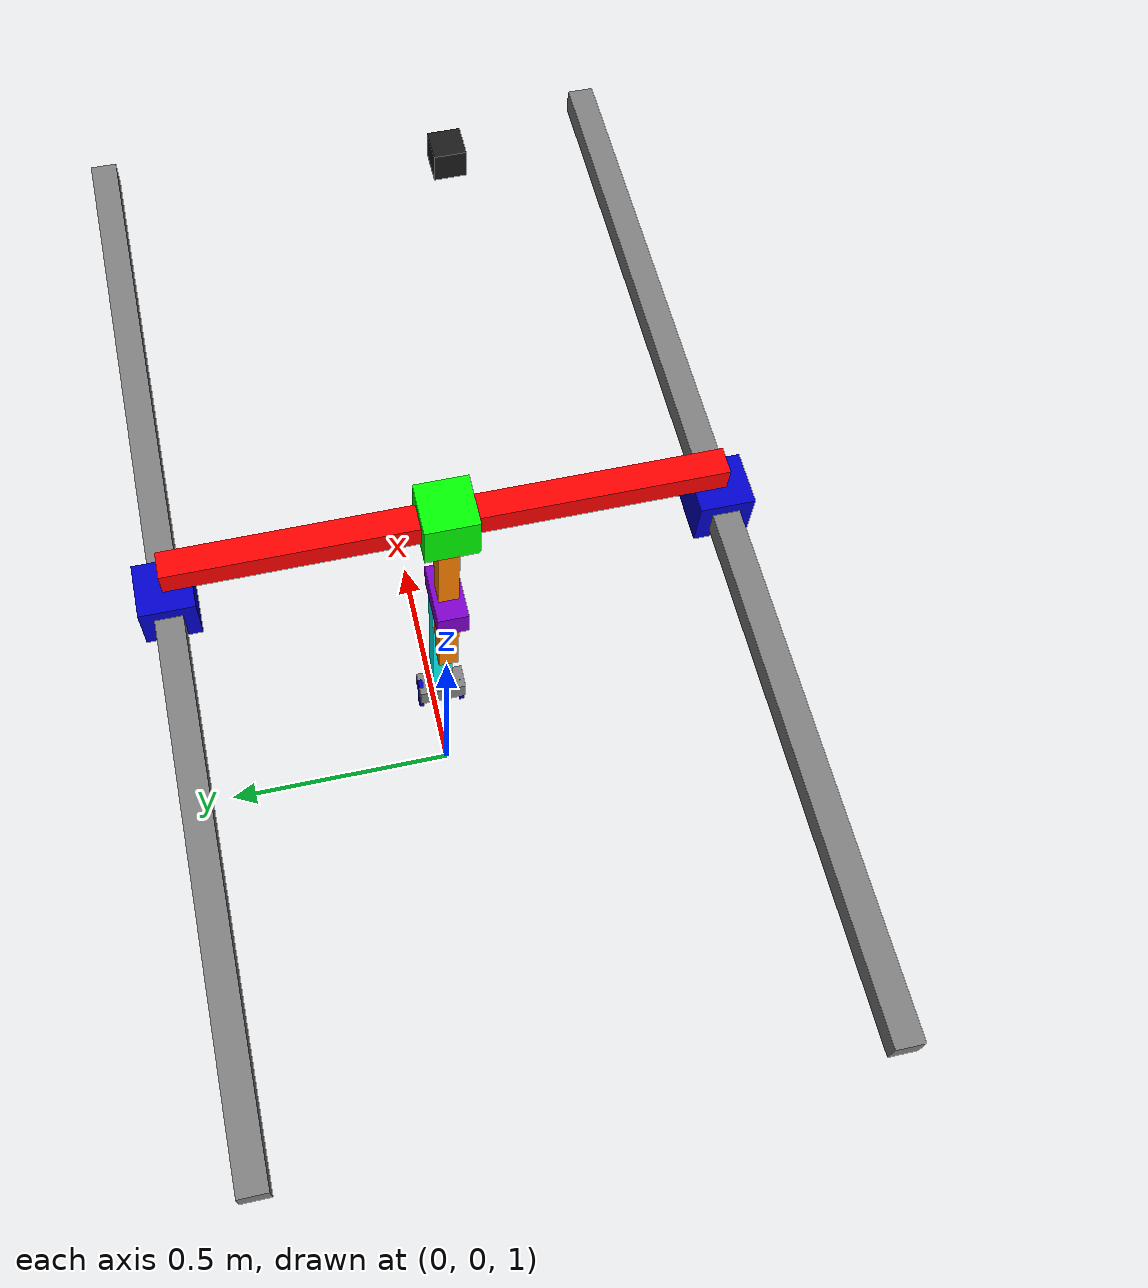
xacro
<?xml version="1.0"?>
<robot xmlns:xacro="http://www.ros.org/wiki/xacro" name="parallel_beam_gantry">

  <!-- |                              CONFIGURATION ARGS                                 | -->

  <xacro:arg name="use_mock_hardware" default="false"/>
  <xacro:arg name="use_sim"          default="true"/>

  <xacro:arg name="enable_overhead_camera" default="true"/>
  <xacro:arg name="overhead_camera_height" default="3.0"/>
  <xacro:arg name="overhead_camera_name"   default="overhead"/>

  <xacro:arg name="namespace" default=""/>

  <!-- |                              INCLUDE XACRO FILES                                | -->

  <xacro:include filename="$(find gantry)/urdf/parallel_beam_gantry.urdf.xacro"/>
  <xacro:include filename="$(find gantry)/urdf/parallel_beam_gantry.ros2_control.xacro"/>
  <xacro:include filename="$(find gantry)/urdf/parallel_beam_gantry.gazebo.xacro"/>
  <xacro:include filename="$(find gantry)/urdf/parallel_beam_gantry.camera.xacro"/>
  <xacro:include filename="$(find gantry)/urdf/simple_gripper.urdf.xacro"/>

  <!-- |                           INSTANTIATE MACROS                                    | -->

  <xacro:parallel_beam_gantry_ros2_control
      name="ParallelBeamGantrySystem"
      use_mock_hardware="$(arg use_mock_hardware)"
      use_sim="$(arg use_sim)"/>

  <xacro:if value="$(arg use_sim)">
    <xacro:parallel_beam_gantry_gazebo/>
  </xacro:if>

  <!-- Overhead RGB camera – only if enabled -->
  <xacro:if value="$(arg enable_overhead_camera)">
    <xacro:overhead_rgb_camera name_prefix="$(arg overhead_camera_name)">
      <origin xyz="0 0 $(arg overhead_camera_height)" rpy="0 1.570796 0"/>
    </xacro:overhead_rgb_camera>
  </xacro:if>
  <!-- Instantiate the gripper and attach it to the end effector -->
  <xacro:simple_gripper name_prefix="" parent_link="end_effector_link">
    <!-- Attach to the bottom tip of the 0.5m long end effector beam (-0.25m in Z) -->
    <origin xyz="0 0 -0.25" rpy="0 0 0"/>
  </xacro:simple_gripper>

</robot>

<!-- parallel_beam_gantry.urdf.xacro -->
<robot name="parallel_beam_gantry">

  <!-- |                                     BASE                                        | -->

  <!-- World Link: The static origin of the entire robot model -->
  <link name="world" />

  <!-- |                         X-AXIS GANTRY STRUCTURE (FIXED)                         | -->

  <!-- First parallel beam, mounted 2m high -->
  <link name="parallel_beam_1_link">
    <visual>
      <origin xyz="0 0 0" rpy="0 0 0"/>
      <geometry><box size="2.0 0.05 0.05"/></geometry>
      <material name="grey"><color rgba="0.5 0.5 0.5 1.0"/></material>
    </visual>
    <collision>
      <origin xyz="0 0 0" rpy="0 0 0"/>
      <geometry><box size="2.0 0.05 0.05"/></geometry>
    </collision>
    <inertial>
      <origin xyz="0 0 0" rpy="0 0 0"/>
      <mass value="2.0"/>
      <inertia ixx="0.000833" ixy="0.0" ixz="0.0" iyy="0.667083" iyz="0.0" izz="0.667083"/>
    </inertial>
  </link>
  <joint name="world_to_beam_1_joint" type="fixed">
    <parent link="world"/>
    <child link="parallel_beam_1_link"/>
    <origin xyz="0 0.5 2.0" rpy="0 0 0"/>
  </joint>

  <!-- Second parallel beam, mounted 2m high -->
  <link name="parallel_beam_2_link">
    <visual>
      <origin xyz="0 0 0" rpy="0 0 0"/>
      <geometry><box size="2.0 0.05 0.05"/></geometry>
      <material name="grey"/>
    </visual>
    <collision>
      <origin xyz="0 0 0" rpy="0 0 0"/>
      <geometry><box size="2.0 0.05 0.05"/></geometry>
    </collision>
    <inertial>
      <origin xyz="0 0 0" rpy="0 0 0"/>
      <mass value="2.0"/>
      <inertia ixx="0.000833" ixy="0.0" ixz="0.0" iyy="0.667083" iyz="0.0" izz="0.667083"/>
    </inertial>
  </link>
  <joint name="world_to_beam_2_joint" type="fixed">
    <parent link="world"/>
    <child link="parallel_beam_2_link"/>
    <origin xyz="0 -0.5 2.0" rpy="0 0 0"/>
  </joint>

  <!-- |                       X-AXIS MOTION ASSEMBLY (MOVES ON X)                       | -->

  <!-- Master slider for the X-axis -->
  <link name="x_slider_1_link">
    <visual>
      <geometry><box size="0.1 0.1 0.1"/></geometry>
      <material name="blue"><color rgba="0 0 0.8 1.0"/></material>
    </visual>
    <collision><geometry><box size="0.1 0.1 0.1"/></geometry></collision>
    <inertial>
      <origin xyz="0 0 0" rpy="0 0 0"/>
      <mass value="0.2"/>
      <inertia ixx="0.000333" ixy="0.0" ixz="0.0" iyy="0.000333" iyz="0.0" izz="0.000333"/>
    </inertial>
  </link>
  <joint name="x_slider_joint" type="prismatic">
    <parent link="parallel_beam_1_link"/>
    <child link="x_slider_1_link"/>
    <origin xyz="0 0 0" rpy="0 0 0"/>
    <axis xyz="1 0 0"/>
    <limit lower="-0.95" upper="0.95" effort="100" velocity="1.0"/>
  </joint>

  <!-- Slave slider for the X-axis (mimics the master) -->
  <link name="x_slider_2_link">
    <visual>
      <geometry><box size="0.1 0.1 0.1"/></geometry>
      <material name="blue"/>
    </visual>
    <collision><geometry><box size="0.1 0.1 0.1"/></geometry></collision>
    <inertial>
      <origin xyz="0 0 0" rpy="0 0 0"/>
      <mass value="0.2"/>
      <inertia ixx="0.000333" ixy="0.0" ixz="0.0" iyy="0.000333" iyz="0.0" izz="0.000333"/>
    </inertial>
  </link>
  <joint name="x_slider_mimic_joint" type="prismatic">
    <parent link="parallel_beam_2_link"/>
    <child link="x_slider_2_link"/>
    <origin xyz="0 0 0" rpy="0 0 0"/>
    <axis xyz="1 0 0"/>
    <limit lower="-0.95" upper="0.95" effort="100" velocity="1.0"/>
    <mimic joint="x_slider_joint" multiplier="1" offset="0"/>
  </joint>

  <!-- |                     Y-AXIS CARRIAGE ASSEMBLY (MOVES ON X)                       | -->

  <!-- Cross beam that spans the gantry and acts as the rail for the Y-axis -->
  <link name="cross_beam_link">
    <visual>
      <geometry><box size="0.05 1.0 0.05"/></geometry>
      <material name="red"><color rgba="1.0 0 0 1.0"/></material>
    </visual>
    <collision><geometry><box size="0.05 1.0 0.05"/></geometry></collision>
    <inertial>
      <origin xyz="0 0 0" rpy="0 0 0"/>
      <mass value="1.0"/>
      <inertia ixx="0.083542" ixy="0.0" ixz="0.0" iyy="0.000417" iyz="0.0" izz="0.083542"/>
    </inertial>
  </link>
  <joint name="cross_beam_attachment_joint" type="fixed">
    <parent link="x_slider_1_link"/>
    <child link="cross_beam_link"/>
    <origin xyz="0 -0.5 0.1" rpy="0 0 0"/>
  </joint>

  <!-- Slider for the Y-axis (moves along the red cross beam) -->
  <link name="y_slider_link">
    <visual>
      <geometry><box size="0.1 0.1 0.1"/></geometry>
      <material name="green"><color rgba="0 1.0 0 1.0"/></material>
    </visual>
    <collision><geometry><box size="0.1 0.1 0.1"/></geometry></collision>
    <inertial>
      <origin xyz="0 0 0" rpy="0 0 0"/>
      <mass value="0.2"/>
      <inertia ixx="0.000333" ixy="0.0" ixz="0.0" iyy="0.000333" iyz="0.0" izz="0.000333"/>
    </inertial>
  </link>
  <joint name="y_slider_joint" type="prismatic">
    <parent link="cross_beam_link"/>
    <child link="y_slider_link"/>
    <origin xyz="0 0 0" rpy="0 0 0"/>
    <axis xyz="0 1 0"/>
    <limit lower="-0.45" upper="0.45" effort="100" velocity="1.0"/>
  </joint>

  <!-- |                       Z-AXIS ACTUATOR ASSEMBLY (MOVES ON Y)                     | -->

  <!-- Vertical beam that acts as the rail for the Z-axis -->
  <link name="vertical_beam_link">
    <visual>
      <geometry><box size="0.04 0.04 0.5"/></geometry>
      <material name="orange"><color rgba="1.0 0.5 0.0 1.0"/></material>
    </visual>
    <collision><geometry><box size="0.04 0.04 0.5"/></geometry></collision>
    <inertial>
      <origin xyz="0 0 0" rpy="0 0 0"/>
      <mass value="0.5"/>
      <inertia ixx="0.010533" ixy="0.0" ixz="0.0" iyy="0.010533" iyz="0.0" izz="0.000133"/>
    </inertial>
  </link>
  <joint name="vertical_beam_attachment_joint" type="fixed">
    <parent link="y_slider_link"/>
    <child link="vertical_beam_link"/>
    <origin xyz="0 0 -0.3" rpy="0 0 0"/>
  </joint>

  <!-- Slider for the Z-axis, now a wider mounting plate -->
  <link name="z_slider_link">
    <visual>
      <!-- Made wider (in X) to act as a mounting plate -->
      <geometry><box size="0.12 0.06 0.06"/></geometry>
      <material name="purple"><color rgba="0.5 0 0.8 1.0"/></material>
    </visual>
    <collision><geometry><box size="0.12 0.06 0.06"/></geometry></collision>
    <inertial>
      <origin xyz="0 0 0" rpy="0 0 0"/>
      <mass value="0.2"/>
      <!-- Inertia recalculated for a 0.12x0.06x0.06 box -->
      <inertia ixx="0.00012" ixy="0.0" ixz="0.0" iyy="0.0003" iyz="0.0" izz="0.0003"/>
    </inertial>
  </link>
  <joint name="z_slider_joint" type="prismatic">
    <parent link="vertical_beam_link"/>
    <child link="z_slider_link"/>
    <origin xyz="0 0 0" rpy="0 0 0"/>
    <axis xyz="0 0 1"/>
    <limit lower="-0.22" upper="0.22" effort="100" velocity="1.0"/>
  </joint>

  <!-- |                          END EFFECTOR (MOVES ON Z)                              | -->

  <!-- The final link, a vertical 0.5m beam, where a tool would be attached -->
  <link name="end_effector_link">
    <visual>
      <!-- Beam is 0.5m long, pointing down along the Z-axis -->
      <geometry>
        <box size="0.04 0.04 0.5"/>
      </geometry>
      <material name="cyan">
        <color rgba="0 1.0 1.0 1.0"/>
      </material>
    </visual>
    <collision>
      <geometry>
        <box size="0.04 0.04 0.5"/>
      </geometry>
    </collision>
    <inertial>
      <origin xyz="0 0 0" rpy="0 0 0"/>
      <mass value="0.4"/>
      <!-- Inertia recalculated for a 0.04x0.04x0.5 box -->
      <inertia ixx="0.008387" ixy="0.0" ixz="0.0" iyy="0.008387" iyz="0.0" izz="0.000107"/>
    </inertial>
  </link>
  <joint name="end_effector_attachment_joint" type="fixed">
    <parent link="z_slider_link"/>
    <child link="end_effector_link"/>
    <origin xyz="0.06 0 -0.28" rpy="0 0 0"/>
  </joint>

</robot>

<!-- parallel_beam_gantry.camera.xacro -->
<robot xmlns:xacro="http://www.ros.org/wiki/xacro">

<xacro:macro name="overhead_rgb_camera" params="*origin name_prefix parent:=world">

  <link name="${name_prefix}_camera_link">
    <visual>
      <origin xyz="0 0 0" rpy="0 0 0"/>
      <geometry><box size="0.04 0.04 0.04"/></geometry>
      <material name="black"><color rgba="0.1 0.1 0.1 1.0"/></material>
    </visual>
    <collision>
      <origin xyz="0 0 0" rpy="0 0 0"/>
      <geometry><box size="0.04 0.04 0.04"/></geometry>
    </collision>
    <inertial>
      <mass value="0.06"/>
      <inertia ixx="1e-6" ixy="0" ixz="0" iyy="1e-6" iyz="0" izz="1e-6"/>
    </inertial>
  </link>

  <joint name="${name_prefix}_camera_joint" type="fixed">
    <parent link="${parent}"/>
    <child link="${name_prefix}_camera_link"/>
    <xacro:insert_block name="origin"/>
  </joint>

  <link name="${name_prefix}_camera_optical_link"/>
  <joint name="${name_prefix}_camera_optical_joint" type="fixed">
    <parent link="${name_prefix}_camera_link"/>
    <child link="${name_prefix}_camera_optical_link"/>
    <origin xyz="0 0 0" rpy="-1.570796 0 -1.570796"/>
  </joint>

  <!-- Gazebo Harmonic sensor definition -->
  <gazebo reference="${name_prefix}_camera_link">
    <sensor name="${name_prefix}_rgb_sensor" type="camera">
      <always_on>true</always_on>
      <update_rate>10</update_rate>
      <visualize>true</visualize>
      <topic>/camera/${name_prefix}/image_raw</topic>
      <camera name="${name_prefix}_camera">
        <horizontal_fov>1.3962634</horizontal_fov>
        <image>
          <width>640</width>
          <height>480</height>
          <format>R8G8B8</format>
        </image>
        <clip>
          <near>0.1</near>
          <far>100</far>
        </clip>
        <optical_frame_id>${name_prefix}_camera_optical_link</optical_frame_id>
      </camera>
    </sensor>
  </gazebo>

</xacro:macro>

</robot>

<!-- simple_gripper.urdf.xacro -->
<robot xmlns:xacro="http://www.ros.org/wiki/xacro">

  <!-- |                       SIMPLE PARALLEL GRIPPER MACRO                             | -->
  <xacro:macro name="simple_gripper" params="name_prefix parent_link *origin">

    <!-- Gripper Base Link -->
    <!-- This is the static part of the gripper that attaches to the robot arm. -->
    <link name="${name_prefix}base_link">
      <visual>
        <geometry><box size="0.05 0.1 0.05"/></geometry>
        <material name="grey"/>
      </visual>
      <collision>
        <geometry><box size="0.05 0.1 0.05"/></geometry>
      </collision>
      <inertial>
        <mass value="0.1"/>
        <inertia ixx="0.000041" ixy="0" ixz="0" iyy="0.000041" iyz="0" izz="0.000083"/>
      </inertial>
    </link>

    <!-- Joint to attach the gripper base to the parent link -->
    <joint name="${name_prefix}base_joint" type="fixed">
      <parent link="${parent_link}"/>
      <child link="${name_prefix}base_link"/>
      <xacro:insert_block name="origin"/>
    </joint>

    <!-- Left Finger (Master) -->
    <!-- This finger's joint is the one you will control directly. -->
    <link name="${name_prefix}left_finger_link">
      <visual>
        <geometry><box size="0.02 0.01 0.1"/></geometry>
        <material name="blue"/>
      </visual>
      <collision>
        <geometry><box size="0.02 0.01 0.1"/></geometry>
      </collision>
      <inertial>
        <mass value="0.02"/>
        <inertia ixx="0.00001" ixy="0" ixz="0" iyy="0.00001" iyz="0" izz="0.000001"/>
      </inertial>
    </link>

    <joint name="${name_prefix}left_finger_joint" type="prismatic">
      <parent link="${name_prefix}base_link"/>
      <child link="${name_prefix}left_finger_link"/>
      <!-- The finger starts offset from the center of the base -->
      <origin xyz="0 0.045 -0.025" rpy="0 0 0"/>
      <!-- It moves outwards along the positive Y-axis -->
      <axis xyz="0 1 0"/>
      <!-- 'lower=0' is closed, 'upper=0.03' is open -->
      <limit lower="0.0" upper="0.03" effort="20" velocity="0.5"/>
    </joint>

    <!-- Right Finger (Slave) -->
    <!-- This finger mimics the left one to create symmetric motion. -->
    <link name="${name_prefix}right_finger_link">
      <visual>
        <geometry><box size="0.02 0.01 0.1"/></geometry>
        <material name="blue"/>
      </visual>
      <collision>
        <geometry><box size="0.02 0.01 0.1"/></geometry>
      </collision>
      <inertial>
        <mass value="0.02"/>
        <inertia ixx="0.00001" ixy="0" ixz="0" iyy="0.00001" iyz="0" izz="0.000001"/>
      </inertial>
    </link>

    <joint name="${name_prefix}right_finger_joint" type="prismatic">
      <parent link="${name_prefix}base_link"/>
      <child link="${name_prefix}right_finger_link"/>
      <!-- This finger starts on the opposite side of the base -->
      <origin xyz="0 -0.045 -0.025" rpy="0 0 0"/>
      <!-- It moves outwards along the negative Y-axis -->
      <axis xyz="0 -1 0"/>
      <limit lower="0.0" upper="0.03" effort="20" velocity="0.5"/>
      <!-- The MIMIC tag is the key: it makes this joint copy the master joint's value -->
      <mimic joint="${name_prefix}left_finger_joint" multiplier="1" offset="0"/>
    </joint>

  </xacro:macro>
</robot>
